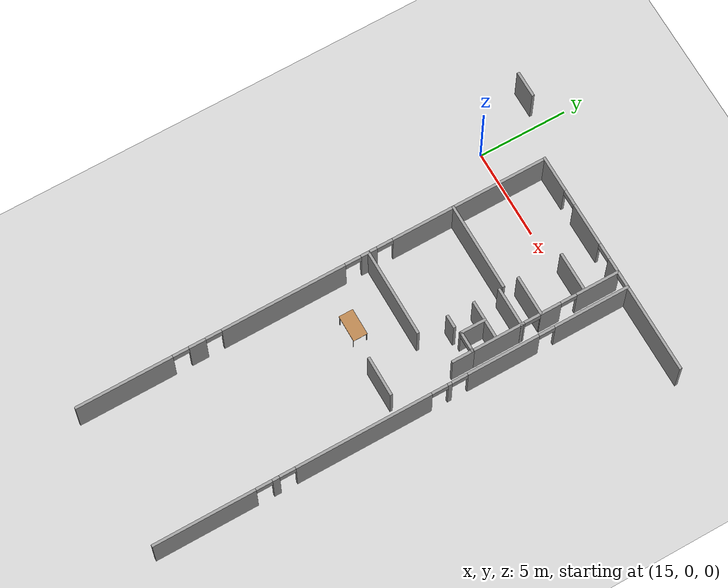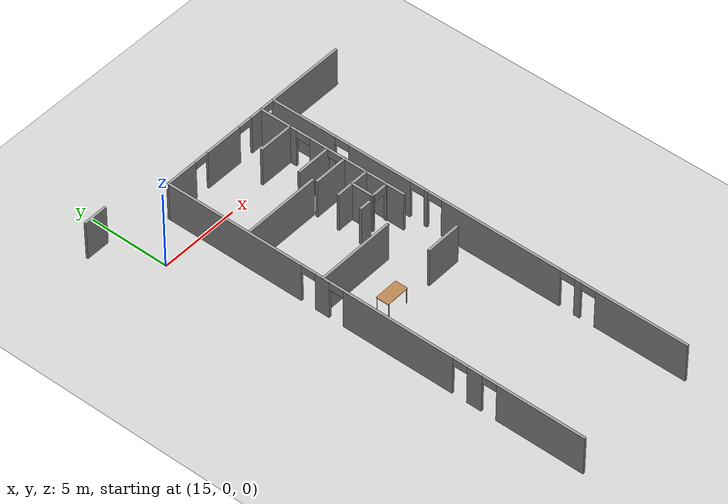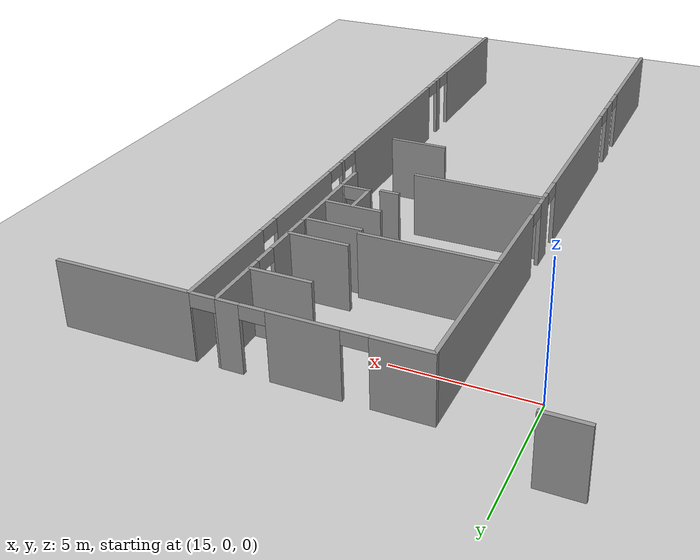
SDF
<sdf version="1.6">
 <world name="default">
  <model name="ground_plane">
   <static>1</static>
   <link name="link">
    <collision name="collision">
     <geometry><plane><normal>0 0 1</normal><size>100 100</size></plane></geometry>
     <surface><friction><ode><mu>100</mu><mu2>50</mu2></ode></friction></surface>
    </collision>
    <visual name="visual">
     <cast_shadows>0</cast_shadows>
     <geometry><plane><normal>0 0 1</normal><size>100 100</size></plane></geometry>
     <material>
      <script><uri>file://media/materials/scripts/gazebo.material</uri><name>Gazebo/Grey</name></script>
     </material>
    </visual>
   </link>
  </model>
  <model name="fin_se1f1.sdf">
   <pose>1.8125 -2.2901 0 0 -0 0</pose>
   <link name="Wall_163">
    <pose>22.2268 4.38596 0 0 -0 3.14159</pose>
    <visual name="Wall_163_Visual_0">
     <pose>-4.00766 0 1.25 0 -0 0</pose>
     <geometry><box><size>4.98467 0.15 2.5</size></box></geometry>
     <material>
      <script><uri>file://media/materials/scripts/gazebo.material</uri><name>Gazebo/Grey</name></script>
      <ambient>1 1 1 1</ambient>
     </material>
     <meta><layer>0</layer></meta>
    </visual>
    <collision name="Wall_163_Collision_0">
     <geometry><box><size>4.98467 0.15 2.5</size></box></geometry>
     <pose>-4.00766 0 1.25 0 -0 0</pose>
    </collision>
    <visual name="Wall_163_Visual_1">
     <pose>-0.2105 0 1.25 0 -0 0</pose>
     <geometry><box><size>0.809654 0.15 2.5</size></box></geometry>
     <material>
      <script><uri>file://media/materials/scripts/gazebo.material</uri><name>Gazebo/Grey</name></script>
      <ambient>1 1 1 1</ambient>
     </material>
     <meta><layer>0</layer></meta>
    </visual>
    <collision name="Wall_163_Collision_1">
     <geometry><box><size>0.809654 0.15 2.5</size></box></geometry>
     <pose>-0.2105 0 1.25 0 -0 0</pose>
    </collision>
    <visual name="Wall_163_Visual_2">
     <pose>2.31375 0 1.25 0 -0 0</pose>
     <geometry><box><size>2.43885 0.15 2.5</size></box></geometry>
     <material>
      <script><uri>file://media/materials/scripts/gazebo.material</uri><name>Gazebo/Grey</name></script>
      <ambient>1 1 1 1</ambient>
     </material>
     <meta><layer>0</layer></meta>
    </visual>
    <collision name="Wall_163_Collision_2">
     <geometry><box><size>2.43885 0.15 2.5</size></box></geometry>
     <pose>2.31375 0 1.25 0 -0 0</pose>
    </collision>
    <visual name="Wall_163_Visual_3">
     <pose>5.46659 0 1.25 0 -0 0</pose>
     <geometry><box><size>2.06682 0.15 2.5</size></box></geometry>
     <material>
      <script><uri>file://media/materials/scripts/gazebo.material</uri><name>Gazebo/Grey</name></script>
      <ambient>1 1 1 1</ambient>
     </material>
     <meta><layer>0</layer></meta>
    </visual>
    <collision name="Wall_163_Collision_3">
     <geometry><box><size>2.06682 0.15 2.5</size></box></geometry>
     <pose>5.46659 0 1.25 0 -0 0</pose>
    </collision>
    <visual name="Wall_163_Visual_4">
     <pose>-1.06533 0 2.25 0 -0 0</pose>
     <geometry><box><size>0.9 0.15 0.5</size></box></geometry>
     <material>
      <script><uri>file://media/materials/scripts/gazebo.material</uri><name>Gazebo/Grey</name></script>
      <ambient>1 1 1 1</ambient>
     </material>
     <meta><layer>0</layer></meta>
    </visual>
    <collision name="Wall_163_Collision_4">
     <geometry><box><size>0.9 0.15 0.5</size></box></geometry>
     <pose>-1.06533 0 2.25 0 -0 0</pose>
    </collision>
    <visual name="Wall_163_Visual_5">
     <pose>0.644327 0 2.25 0 -0 0</pose>
     <geometry><box><size>0.9 0.15 0.5</size></box></geometry>
     <material>
      <script><uri>file://media/materials/scripts/gazebo.material</uri><name>Gazebo/Grey</name></script>
      <ambient>1 1 1 1</ambient>
     </material>
     <meta><layer>0</layer></meta>
    </visual>
    <collision name="Wall_163_Collision_5">
     <geometry><box><size>0.9 0.15 0.5</size></box></geometry>
     <pose>0.644327 0 2.25 0 -0 0</pose>
    </collision>
    <visual name="Wall_163_Visual_6">
     <pose>3.98318 0 2.25 0 -0 0</pose>
     <geometry><box><size>0.9 0.15 0.5</size></box></geometry>
     <material>
      <script><uri>file://media/materials/scripts/gazebo.material</uri><name>Gazebo/Grey</name></script>
      <ambient>1 1 1 1</ambient>
     </material>
     <meta><layer>0</layer></meta>
    </visual>
    <collision name="Wall_163_Collision_6">
     <geometry><box><size>0.9 0.15 0.5</size></box></geometry>
     <pose>3.98318 0 2.25 0 -0 0</pose>
    </collision>
   </link>
   <link name="Wall_164">
    <pose>15.8018 -8.91404 0 0 0 -1.5708</pose>
    <visual name="Wall_164_Visual_0">
     <pose>-8.91283 0 1.25 0 -0 0</pose>
     <geometry><box><size>8.92434 0.15 2.5</size></box></geometry>
     <material>
      <script><uri>file://media/materials/scripts/gazebo.material</uri><name>Gazebo/Grey</name></script>
      <ambient>1 1 1 1</ambient>
     </material>
     <meta><layer>0</layer></meta>
    </visual>
    <collision name="Wall_164_Collision_0">
     <geometry><box><size>8.92434 0.15 2.5</size></box></geometry>
     <pose>-8.91283 0 1.25 0 -0 0</pose>
    </collision>
    <visual name="Wall_164_Visual_1">
     <pose>-3.09555 0 1.25 0 -0 0</pose>
     <geometry><box><size>0.910221 0.15 2.5</size></box></geometry>
     <material>
      <script><uri>file://media/materials/scripts/gazebo.material</uri><name>Gazebo/Grey</name></script>
      <ambient>1 1 1 1</ambient>
     </material>
     <meta><layer>0</layer></meta>
    </visual>
    <collision name="Wall_164_Collision_1">
     <geometry><box><size>0.910221 0.15 2.5</size></box></geometry>
     <pose>-3.09555 0 1.25 0 -0 0</pose>
    </collision>
    <visual name="Wall_164_Visual_2">
     <pose>1.75182 0 1.25 0 -0 0</pose>
     <geometry><box><size>6.98452 0.15 2.5</size></box></geometry>
     <material>
      <script><uri>file://media/materials/scripts/gazebo.material</uri><name>Gazebo/Grey</name></script>
      <ambient>1 1 1 1</ambient>
     </material>
     <meta><layer>0</layer></meta>
    </visual>
    <collision name="Wall_164_Collision_2">
     <geometry><box><size>6.98452 0.15 2.5</size></box></geometry>
     <pose>1.75182 0 1.25 0 -0 0</pose>
    </collision>
    <visual name="Wall_164_Visual_3">
     <pose>6.60925 0 1.25 0 -0 0</pose>
     <geometry><box><size>0.930335 0.15 2.5</size></box></geometry>
     <material>
      <script><uri>file://media/materials/scripts/gazebo.material</uri><name>Gazebo/Grey</name></script>
      <ambient>1 1 1 1</ambient>
     </material>
     <meta><layer>0</layer></meta>
    </visual>
    <collision name="Wall_164_Collision_3">
     <geometry><box><size>0.930335 0.15 2.5</size></box></geometry>
     <pose>6.60925 0 1.25 0 -0 0</pose>
    </collision>
    <visual name="Wall_164_Visual_4">
     <pose>10.6747 0 1.25 0 -0 0</pose>
     <geometry><box><size>5.40058 0.15 2.5</size></box></geometry>
     <material>
      <script><uri>file://media/materials/scripts/gazebo.material</uri><name>Gazebo/Grey</name></script>
      <ambient>1 1 1 1</ambient>
     </material>
     <meta><layer>0</layer></meta>
    </visual>
    <collision name="Wall_164_Collision_4">
     <geometry><box><size>5.40058 0.15 2.5</size></box></geometry>
     <pose>10.6747 0 1.25 0 -0 0</pose>
    </collision>
    <visual name="Wall_164_Visual_5">
     <pose>-4.00066 0 2.25 0 -0 0</pose>
     <geometry><box><size>0.9 0.15 0.5</size></box></geometry>
     <material>
      <script><uri>file://media/materials/scripts/gazebo.material</uri><name>Gazebo/Grey</name></script>
      <ambient>1 1 1 1</ambient>
     </material>
     <meta><layer>0</layer></meta>
    </visual>
    <collision name="Wall_164_Collision_5">
     <geometry><box><size>0.9 0.15 0.5</size></box></geometry>
     <pose>-4.00066 0 2.25 0 -0 0</pose>
    </collision>
    <visual name="Wall_164_Visual_6">
     <pose>-2.19044 0 2.25 0 -0 0</pose>
     <geometry><box><size>0.9 0.15 0.5</size></box></geometry>
     <material>
      <script><uri>file://media/materials/scripts/gazebo.material</uri><name>Gazebo/Grey</name></script>
      <ambient>1 1 1 1</ambient>
     </material>
     <meta><layer>0</layer></meta>
    </visual>
    <collision name="Wall_164_Collision_6">
     <geometry><box><size>0.9 0.15 0.5</size></box></geometry>
     <pose>-2.19044 0 2.25 0 -0 0</pose>
    </collision>
    <visual name="Wall_164_Visual_7">
     <pose>5.69408 0 2.25 0 -0 0</pose>
     <geometry><box><size>0.9 0.15 0.5</size></box></geometry>
     <material>
      <script><uri>file://media/materials/scripts/gazebo.material</uri><name>Gazebo/Grey</name></script>
      <ambient>1 1 1 1</ambient>
     </material>
     <meta><layer>0</layer></meta>
    </visual>
    <collision name="Wall_164_Collision_7">
     <geometry><box><size>0.9 0.15 0.5</size></box></geometry>
     <pose>5.69408 0 2.25 0 -0 0</pose>
    </collision>
    <visual name="Wall_164_Visual_8">
     <pose>7.52442 0 2.25 0 -0 0</pose>
     <geometry><box><size>0.9 0.15 0.5</size></box></geometry>
     <material>
      <script><uri>file://media/materials/scripts/gazebo.material</uri><name>Gazebo/Grey</name></script>
      <ambient>1 1 1 1</ambient>
     </material>
     <meta><layer>0</layer></meta>
    </visual>
    <collision name="Wall_164_Collision_8">
     <geometry><box><size>0.9 0.15 0.5</size></box></geometry>
     <pose>7.52442 0 2.25 0 -0 0</pose>
    </collision>
   </link>
   <link name="Wall_169">
    <pose>23.7723 -8.93568 0 0 0 -1.5708</pose>
    <visual name="Wall_169_Visual_0">
     <pose>-11.2367 0 1.25 0 -0 0</pose>
     <geometry><box><size>4.27658 0.15 2.5</size></box></geometry>
     <material>
      <script><uri>file://media/materials/scripts/gazebo.material</uri><name>Gazebo/Grey</name></script>
      <ambient>1 1 1 1</ambient>
     </material>
     <meta><layer>0</layer></meta>
    </visual>
    <collision name="Wall_169_Collision_0">
     <geometry><box><size>4.27658 0.15 2.5</size></box></geometry>
     <pose>-11.2367 0 1.25 0 -0 0</pose>
    </collision>
    <visual name="Wall_169_Visual_1">
     <pose>-6.16439 0 1.25 0 -0 0</pose>
     <geometry><box><size>4.06805 0.15 2.5</size></box></geometry>
     <material>
      <script><uri>file://media/materials/scripts/gazebo.material</uri><name>Gazebo/Grey</name></script>
      <ambient>1 1 1 1</ambient>
     </material>
     <meta><layer>0</layer></meta>
    </visual>
    <collision name="Wall_169_Collision_1">
     <geometry><box><size>4.06805 0.15 2.5</size></box></geometry>
     <pose>-6.16439 0 1.25 0 -0 0</pose>
    </collision>
    <visual name="Wall_169_Visual_2">
     <pose>-3.11719 0 1.25 0 -0 0</pose>
     <geometry><box><size>0.22636 0.15 2.5</size></box></geometry>
     <material>
      <script><uri>file://media/materials/scripts/gazebo.material</uri><name>Gazebo/Grey</name></script>
      <ambient>1 1 1 1</ambient>
     </material>
     <meta><layer>0</layer></meta>
    </visual>
    <collision name="Wall_169_Collision_2">
     <geometry><box><size>0.22636 0.15 2.5</size></box></geometry>
     <pose>-3.11719 0 1.25 0 -0 0</pose>
    </collision>
    <visual name="Wall_169_Visual_3">
     <pose>1.70001 0 1.25 0 -0 0</pose>
     <geometry><box><size>7.60804 0.15 2.5</size></box></geometry>
     <material>
      <script><uri>file://media/materials/scripts/gazebo.material</uri><name>Gazebo/Grey</name></script>
      <ambient>1 1 1 1</ambient>
     </material>
     <meta><layer>0</layer></meta>
    </visual>
    <collision name="Wall_169_Collision_3">
     <geometry><box><size>7.60804 0.15 2.5</size></box></geometry>
     <pose>1.70001 0 1.25 0 -0 0</pose>
    </collision>
    <visual name="Wall_169_Visual_4">
     <pose>6.59767 0 1.25 0 -0 0</pose>
     <geometry><box><size>0.387269 0.15 2.5</size></box></geometry>
     <material>
      <script><uri>file://media/materials/scripts/gazebo.material</uri><name>Gazebo/Grey</name></script>
      <ambient>1 1 1 1</ambient>
     </material>
     <meta><layer>0</layer></meta>
    </visual>
    <collision name="Wall_169_Collision_4">
     <geometry><box><size>0.387269 0.15 2.5</size></box></geometry>
     <pose>6.59767 0 1.25 0 -0 0</pose>
    </collision>
    <visual name="Wall_169_Visual_5">
     <pose>10.5332 0 1.25 0 -0 0</pose>
     <geometry><box><size>5.6837 0.15 2.5</size></box></geometry>
     <material>
      <script><uri>file://media/materials/scripts/gazebo.material</uri><name>Gazebo/Grey</name></script>
      <ambient>1 1 1 1</ambient>
     </material>
     <meta><layer>0</layer></meta>
    </visual>
    <collision name="Wall_169_Collision_5">
     <geometry><box><size>5.6837 0.15 2.5</size></box></geometry>
     <pose>10.5332 0 1.25 0 -0 0</pose>
    </collision>
    <visual name="Wall_169_Visual_6">
     <pose>-8.64842 0 2.25 0 -0 0</pose>
     <geometry><box><size>0.9 0.15 0.5</size></box></geometry>
     <material>
      <script><uri>file://media/materials/scripts/gazebo.material</uri><name>Gazebo/Grey</name></script>
      <ambient>1 1 1 1</ambient>
     </material>
     <meta><layer>0</layer></meta>
    </visual>
    <collision name="Wall_169_Collision_6">
     <geometry><box><size>0.9 0.15 0.5</size></box></geometry>
     <pose>-8.64842 0 2.25 0 -0 0</pose>
    </collision>
    <visual name="Wall_169_Visual_7">
     <pose>-3.68037 0 2.25 0 -0 0</pose>
     <geometry><box><size>0.9 0.15 0.5</size></box></geometry>
     <material>
      <script><uri>file://media/materials/scripts/gazebo.material</uri><name>Gazebo/Grey</name></script>
      <ambient>1 1 1 1</ambient>
     </material>
     <meta><layer>0</layer></meta>
    </visual>
    <collision name="Wall_169_Collision_7">
     <geometry><box><size>0.9 0.15 0.5</size></box></geometry>
     <pose>-3.68037 0 2.25 0 -0 0</pose>
    </collision>
    <visual name="Wall_169_Visual_8">
     <pose>-2.55401 0 2.25 0 -0 0</pose>
     <geometry><box><size>0.9 0.15 0.5</size></box></geometry>
     <material>
      <script><uri>file://media/materials/scripts/gazebo.material</uri><name>Gazebo/Grey</name></script>
      <ambient>1 1 1 1</ambient>
     </material>
     <meta><layer>0</layer></meta>
    </visual>
    <collision name="Wall_169_Collision_8">
     <geometry><box><size>0.9 0.15 0.5</size></box></geometry>
     <pose>-2.55401 0 2.25 0 -0 0</pose>
    </collision>
    <visual name="Wall_169_Visual_9">
     <pose>5.95404 0 2.25 0 -0 0</pose>
     <geometry><box><size>0.9 0.15 0.5</size></box></geometry>
     <material>
      <script><uri>file://media/materials/scripts/gazebo.material</uri><name>Gazebo/Grey</name></script>
      <ambient>1 1 1 1</ambient>
     </material>
     <meta><layer>0</layer></meta>
    </visual>
    <collision name="Wall_169_Collision_9">
     <geometry><box><size>0.9 0.15 0.5</size></box></geometry>
     <pose>5.95404 0 2.25 0 -0 0</pose>
    </collision>
    <visual name="Wall_169_Visual_10">
     <pose>7.2413 0 2.25 0 -0 0</pose>
     <geometry><box><size>0.9 0.15 0.5</size></box></geometry>
     <material>
      <script><uri>file://media/materials/scripts/gazebo.material</uri><name>Gazebo/Grey</name></script>
      <ambient>1 1 1 1</ambient>
     </material>
     <meta><layer>0</layer></meta>
    </visual>
    <collision name="Wall_169_Collision_10">
     <geometry><box><size>0.9 0.15 0.5</size></box></geometry>
     <pose>7.2413 0 2.25 0 -0 0</pose>
    </collision>
   </link>
   <link name="Wall_171">
    <pose>22.8525 0.189322 0 0 0 -1.5708</pose>
    <visual name="Wall_171_Visual_0">
     <pose>-3.01682 0 1.25 0 -0 0</pose>
     <geometry><box><size>2.46636 0.15 2.5</size></box></geometry>
     <material>
      <script><uri>file://media/materials/scripts/gazebo.material</uri><name>Gazebo/Grey</name></script>
      <ambient>1 1 1 1</ambient>
     </material>
     <meta><layer>0</layer></meta>
    </visual>
    <collision name="Wall_171_Collision_0">
     <geometry><box><size>2.46636 0.15 2.5</size></box></geometry>
     <pose>-3.01682 0 1.25 0 -0 0</pose>
    </collision>
    <visual name="Wall_171_Visual_1">
     <pose>-0.287734 0 1.25 0 -0 0</pose>
     <geometry><box><size>1.19181 0.15 2.5</size></box></geometry>
     <material>
      <script><uri>file://media/materials/scripts/gazebo.material</uri><name>Gazebo/Grey</name></script>
      <ambient>1 1 1 1</ambient>
     </material>
     <meta><layer>0</layer></meta>
    </visual>
    <collision name="Wall_171_Collision_1">
     <geometry><box><size>1.19181 0.15 2.5</size></box></geometry>
     <pose>-0.287734 0 1.25 0 -0 0</pose>
    </collision>
    <visual name="Wall_171_Visual_2">
     <pose>2.72909 0 1.25 0 -0 0</pose>
     <geometry><box><size>3.04183 0.15 2.5</size></box></geometry>
     <material>
      <script><uri>file://media/materials/scripts/gazebo.material</uri><name>Gazebo/Grey</name></script>
      <ambient>1 1 1 1</ambient>
     </material>
     <meta><layer>0</layer></meta>
    </visual>
    <collision name="Wall_171_Collision_2">
     <geometry><box><size>3.04183 0.15 2.5</size></box></geometry>
     <pose>2.72909 0 1.25 0 -0 0</pose>
    </collision>
    <visual name="Wall_171_Visual_3">
     <pose>-1.33364 0 2.25 0 -0 0</pose>
     <geometry><box><size>0.9 0.15 0.5</size></box></geometry>
     <material>
      <script><uri>file://media/materials/scripts/gazebo.material</uri><name>Gazebo/Grey</name></script>
      <ambient>1 1 1 1</ambient>
     </material>
     <meta><layer>0</layer></meta>
    </visual>
    <collision name="Wall_171_Collision_3">
     <geometry><box><size>0.9 0.15 0.5</size></box></geometry>
     <pose>-1.33364 0 2.25 0 -0 0</pose>
    </collision>
    <visual name="Wall_171_Visual_4">
     <pose>0.758172 0 2.25 0 -0 0</pose>
     <geometry><box><size>0.9 0.15 0.5</size></box></geometry>
     <material>
      <script><uri>file://media/materials/scripts/gazebo.material</uri><name>Gazebo/Grey</name></script>
      <ambient>1 1 1 1</ambient>
     </material>
     <meta><layer>0</layer></meta>
    </visual>
    <collision name="Wall_171_Collision_4">
     <geometry><box><size>0.9 0.15 0.5</size></box></geometry>
     <pose>0.758172 0 2.25 0 -0 0</pose>
    </collision>
   </link>
   <link name="Wall_172">
    <pose>22.3025 -3.98568 0 0 -0 3.14159</pose>
    <visual name="Wall_172_Visual_0">
     <pose>-0.519407 0 1.25 0 -0 0</pose>
     <geometry><box><size>0.211186 0.15 2.5</size></box></geometry>
     <material>
      <script><uri>file://media/materials/scripts/gazebo.material</uri><name>Gazebo/Grey</name></script>
      <ambient>1 1 1 1</ambient>
     </material>
     <meta><layer>0</layer></meta>
    </visual>
    <collision name="Wall_172_Collision_0">
     <geometry><box><size>0.211186 0.15 2.5</size></box></geometry>
     <pose>-0.519407 0 1.25 0 -0 0</pose>
    </collision>
    <visual name="Wall_172_Visual_1">
     <pose>0.555593 0 1.25 0 -0 0</pose>
     <geometry><box><size>0.138814 0.15 2.5</size></box></geometry>
     <material>
      <script><uri>file://media/materials/scripts/gazebo.material</uri><name>Gazebo/Grey</name></script>
      <ambient>1 1 1 1</ambient>
     </material>
     <meta><layer>0</layer></meta>
    </visual>
    <collision name="Wall_172_Collision_1">
     <geometry><box><size>0.138814 0.15 2.5</size></box></geometry>
     <pose>0.555593 0 1.25 0 -0 0</pose>
    </collision>
    <visual name="Wall_172_Visual_2">
     <pose>0.036186 0 2.25 0 -0 0</pose>
     <geometry><box><size>0.9 0.15 0.5</size></box></geometry>
     <material>
      <script><uri>file://media/materials/scripts/gazebo.material</uri><name>Gazebo/Grey</name></script>
      <ambient>1 1 1 1</ambient>
     </material>
     <meta><layer>0</layer></meta>
    </visual>
    <collision name="Wall_172_Collision_2">
     <geometry><box><size>0.9 0.15 0.5</size></box></geometry>
     <pose>0.036186 0 2.25 0 -0 0</pose>
    </collision>
   </link>
   <link name="Wall_173">
    <collision name="Wall_173_Collision">
     <geometry><box><size>1.5 0.15 2.5</size></box></geometry>
     <pose>0 0 1.25 0 -0 0</pose>
    </collision>
    <visual name="Wall_173_Visual">
     <pose>0 0 1.25 0 -0 0</pose>
     <geometry><box><size>1.5 0.15 2.5</size></box></geometry>
     <material>
      <script><uri>file://media/materials/scripts/gazebo.material</uri><name>Gazebo/Grey</name></script>
      <ambient>1 1 1 1</ambient>
     </material>
     <meta><layer>0</layer></meta>
    </visual>
    <pose>21.7525 -3.31068 0 0 -0 1.5708</pose>
   </link>
   <link name="Wall_178">
    <collision name="Wall_178_Collision">
     <geometry><box><size>2.25 0.15 2.5</size></box></geometry>
     <pose>0 0 1.25 0 -0 0</pose>
    </collision>
    <visual name="Wall_178_Visual">
     <pose>0 0 1.25 0 -0 0</pose>
     <geometry><box><size>2.25 0.15 2.5</size></box></geometry>
     <material>
      <script><uri>file://media/materials/scripts/gazebo.material</uri><name>Gazebo/Grey</name></script>
      <ambient>1 1 1 1</ambient>
     </material>
     <meta><layer>0</layer></meta>
    </visual>
    <pose>21.751 2.44334 0 0 -0 0</pose>
   </link>
   <link name="Wall_180">
    <collision name="Wall_180_Collision">
     <geometry><box><size>2.25 0.15 2.5</size></box></geometry>
     <pose>0 0 1.25 0 -0 0</pose>
    </collision>
    <visual name="Wall_180_Visual">
     <pose>0 0 1.25 0 -0 0</pose>
     <geometry><box><size>2.25 0.15 2.5</size></box></geometry>
     <material>
      <script><uri>file://media/materials/scripts/gazebo.material</uri><name>Gazebo/Grey</name></script>
      <ambient>1 1 1 1</ambient>
     </material>
     <meta><layer>0</layer></meta>
    </visual>
    <pose>21.751 -0.065056 0 0 -0 0</pose>
   </link>
   <link name="Wall_182">
    <collision name="Wall_182_Collision">
     <geometry><box><size>2.25 0.15 2.5</size></box></geometry>
     <pose>0 0 1.25 0 -0 0</pose>
    </collision>
    <visual name="Wall_182_Visual">
     <pose>0 0 1.25 0 -0 0</pose>
     <geometry><box><size>2.25 0.15 2.5</size></box></geometry>
     <material>
      <script><uri>file://media/materials/scripts/gazebo.material</uri><name>Gazebo/Grey</name></script>
      <ambient>1 1 1 1</ambient>
     </material>
     <meta><layer>0</layer></meta>
    </visual>
    <pose>21.7816 -2.63463 0 0 -0 0</pose>
   </link>
   <link name="Wall_184">
    <collision name="Wall_184_Collision">
     <geometry><box><size>2.25 0.15 2.5</size></box></geometry>
     <pose>0 0 1.25 0 -0 0</pose>
    </collision>
    <visual name="Wall_184_Visual">
     <pose>0 0 1.25 0 -0 0</pose>
     <geometry><box><size>2.25 0.15 2.5</size></box></geometry>
     <material>
      <script><uri>file://media/materials/scripts/gazebo.material</uri><name>Gazebo/Grey</name></script>
      <ambient>1 1 1 1</ambient>
     </material>
     <meta><layer>0</layer></meta>
    </visual>
    <pose>21.8132 -1.19202 0 0 -0 3.14159</pose>
   </link>
   <link name="Wall_186">
    <collision name="Wall_186_Collision">
     <geometry><box><size>0.75 0.15 2.5</size></box></geometry>
     <pose>0 0 1.25 0 -0 0</pose>
    </collision>
    <visual name="Wall_186_Visual">
     <pose>0 0 1.25 0 -0 0</pose>
     <geometry><box><size>0.75 0.15 2.5</size></box></geometry>
     <material>
      <script><uri>file://media/materials/scripts/gazebo.material</uri><name>Gazebo/Grey</name></script>
      <ambient>1 1 1 1</ambient>
     </material>
     <meta><layer>0</layer></meta>
    </visual>
    <pose>21.0031 -4.12868 0 0 -0 3.14159</pose>
   </link>
   <link name="Wall_188">
    <collision name="Wall_188_Collision">
     <geometry><box><size>1.25 0.15 2.5</size></box></geometry>
     <pose>0 0 1.25 0 -0 0</pose>
    </collision>
    <visual name="Wall_188_Visual">
     <pose>0 0 1.25 0 -0 0</pose>
     <geometry><box><size>1.25 0.15 2.5</size></box></geometry>
     <material>
      <script><uri>file://media/materials/scripts/gazebo.material</uri><name>Gazebo/Grey</name></script>
      <ambient>1 1 1 1</ambient>
     </material>
     <meta><layer>0</layer></meta>
    </visual>
    <pose>22.8525 -4.53568 0 0 0 -1.5708</pose>
   </link>
   <link name="Wall_190">
    <collision name="Wall_190_Collision">
     <geometry><box><size>5 0.15 2.5</size></box></geometry>
     <pose>0 0 1.25 0 -0 0</pose>
    </collision>
    <visual name="Wall_190_Visual">
     <pose>0 0 1.25 0 -0 0</pose>
     <geometry><box><size>5 0.15 2.5</size></box></geometry>
     <material>
      <script><uri>file://media/materials/scripts/gazebo.material</uri><name>Gazebo/Grey</name></script>
      <ambient>1 1 1 1</ambient>
     </material>
     <meta><layer>0</layer></meta>
    </visual>
    <pose>18.2357 -0.947296 0 0 -0 3.14159</pose>
   </link>
   <link name="Wall_198">
    <collision name="Wall_198_Collision">
     <geometry><box><size>5 0.15 2.5</size></box></geometry>
     <pose>0 0 1.25 0 -0 0</pose>
    </collision>
    <visual name="Wall_198_Visual">
     <pose>0 0 1.25 0 -0 0</pose>
     <geometry><box><size>5 0.15 2.5</size></box></geometry>
     <material>
      <script><uri>file://media/materials/scripts/gazebo.material</uri><name>Gazebo/Grey</name></script>
      <ambient>1 1 1 1</ambient>
     </material>
     <meta><layer>0</layer></meta>
    </visual>
    <pose>18.2432 -5.83852 0 0 -0 0</pose>
   </link>
   <link name="Wall_201">
    <collision name="Wall_201_Collision">
     <geometry><box><size>2.25 0.15 2.5</size></box></geometry>
     <pose>0 0 1.25 0 -0 0</pose>
    </collision>
    <visual name="Wall_201_Visual">
     <pose>0 0 1.25 0 -0 0</pose>
     <geometry><box><size>2.25 0.15 2.5</size></box></geometry>
     <material>
      <script><uri>file://media/materials/scripts/gazebo.material</uri><name>Gazebo/Grey</name></script>
      <ambient>1 1 1 1</ambient>
     </material>
     <meta><layer>0</layer></meta>
    </visual>
    <pose>21.736 -8.57834 0 0 -0 0</pose>
   </link>
   <link name="Wall_3">
    <collision name="Wall_3_Collision">
     <geometry><box><size>1.5 0.15 2.5</size></box></geometry>
     <pose>0 0 1.25 0 -0 0</pose>
    </collision>
    <visual name="Wall_3_Visual">
     <pose>0 0 1.25 0 -0 0</pose>
     <geometry><box><size>1.5 0.15 2.5</size></box></geometry>
     <material>
      <script><uri>file://media/materials/scripts/gazebo.material</uri><name>Gazebo/Grey</name></script>
      <ambient>1 1 1 1</ambient>
     </material>
     <meta><layer>0</layer></meta>
    </visual>
    <pose>11.7754 5.67457 0 0 -0 0</pose>
   </link>
   <static>1</static>
  </model>
  <model name="table_13">
   <static>1</static>
   <link name="link">
    <collision name="surface">
     <pose>0 0 1 0 -0 0</pose>
     <geometry><box><size>1.5 0.8 0.03</size></box></geometry>
     <surface><friction><ode><mu>0.6</mu><mu2>0.6</mu2></ode></friction></surface>
    </collision>
    <visual name="visual1">
     <pose>0 0 1 0 -0 0</pose>
     <geometry><box><size>1.5 0.8 0.03</size></box></geometry>
     <material>
      <script><uri>file://media/materials/scripts/gazebo.material</uri><name>Gazebo/Wood</name></script>
     </material>
    </visual>
    <collision name="front_left_leg">
     <pose>0.68 0.38 0.5 0 -0 0</pose>
     <geometry><cylinder><radius>0.02</radius><length>1</length></cylinder></geometry>
    </collision>
    <visual name="front_left_leg">
     <pose>0.68 0.38 0.5 0 -0 0</pose>
     <geometry><cylinder><radius>0.02</radius><length>1</length></cylinder></geometry>
     <material>
      <script><uri>file://media/materials/scripts/gazebo.material</uri><name>Gazebo/Grey</name></script>
     </material>
    </visual>
    <collision name="front_right_leg">
     <pose>0.68 -0.38 0.5 0 -0 0</pose>
     <geometry><cylinder><radius>0.02</radius><length>1</length></cylinder></geometry>
    </collision>
    <visual name="front_right_leg">
     <pose>0.68 -0.38 0.5 0 -0 0</pose>
     <geometry><cylinder><radius>0.02</radius><length>1</length></cylinder></geometry>
     <material>
      <script><uri>file://media/materials/scripts/gazebo.material</uri><name>Gazebo/Grey</name></script>
     </material>
    </visual>
    <collision name="back_right_leg">
     <pose>-0.68 -0.38 0.5 0 -0 0</pose>
     <geometry><cylinder><radius>0.02</radius><length>1</length></cylinder></geometry>
    </collision>
    <visual name="back_right_leg">
     <pose>-0.68 -0.38 0.5 0 -0 0</pose>
     <geometry><cylinder><radius>0.02</radius><length>1</length></cylinder></geometry>
     <material>
      <script><uri>file://media/materials/scripts/gazebo.material</uri><name>Gazebo/Grey</name></script>
     </material>
    </visual>
    <collision name="back_left_leg">
     <pose>-0.68 0.38 0.5 0 -0 0</pose>
     <geometry><cylinder><radius>0.02</radius><length>1</length></cylinder></geometry>
    </collision>
    <visual name="back_left_leg">
     <pose>-0.68 0.38 0.5 0 -0 0</pose>
     <geometry><cylinder><radius>0.02</radius><length>1</length></cylinder></geometry>
     <material>
      <script><uri>file://media/materials/scripts/gazebo.material</uri><name>Gazebo/Grey</name></script>
     </material>
    </visual>
   </link>
   <pose>20.1153 -10.4407 0 0 -0 0</pose>
  </model>
 </world>
</sdf>
